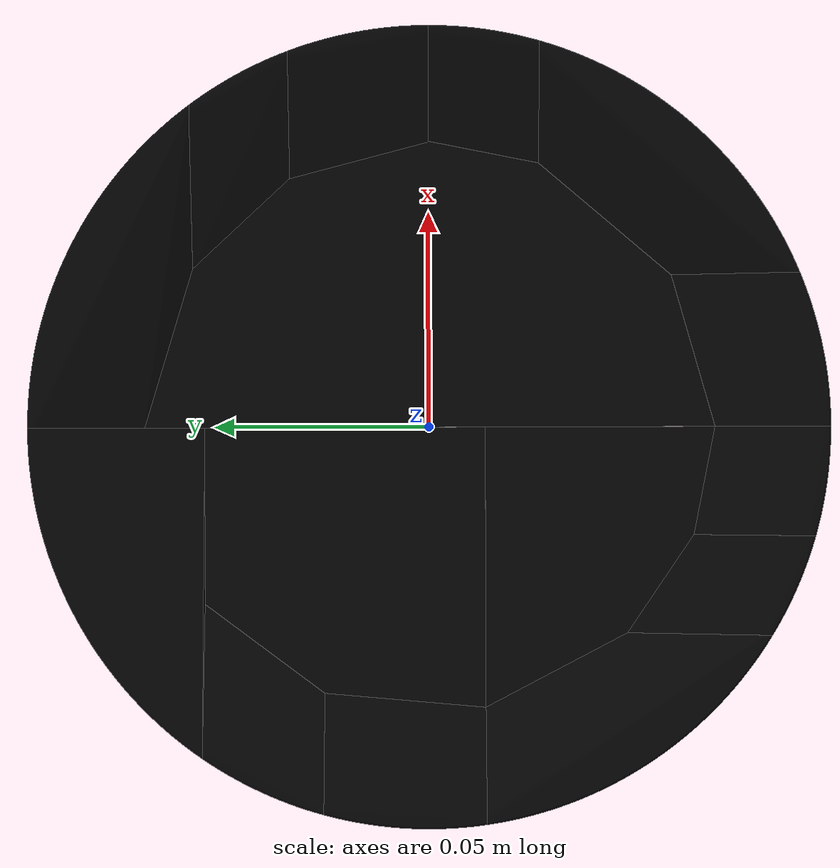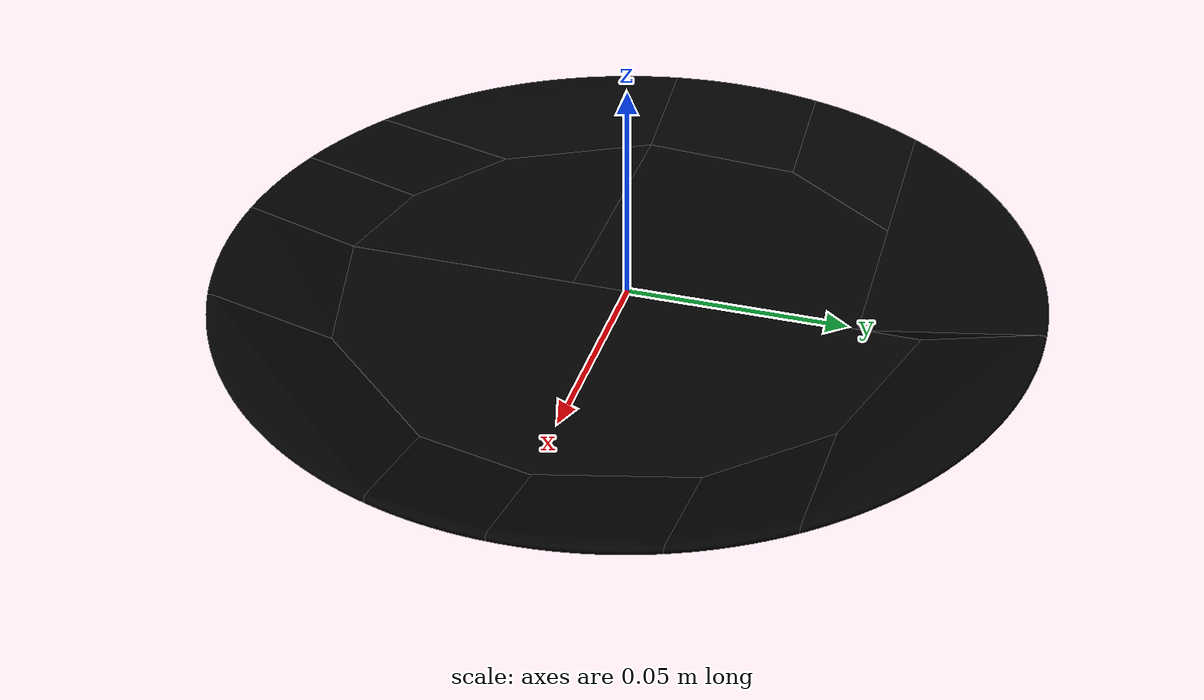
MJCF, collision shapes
<mujoco model="plate_23">
  <asset>
    <mesh file="visual/model_normalized_0.obj" name="model_normalized_0_vis" scale="0.185 0.185 0.185" refquat="1.0 0.0 0.0 0.0" />
    <material name="Material.387" specular="0.5" shininess="0.359999993" rgba="0.800000 0.800000 0.800000 1.0" />
    <mesh file="collision/model_collision_0.obj" name="model_collision_0" scale="0.185 0.185 0.185" refquat="1.0 0.0 0.0 0.0" />
    <mesh file="collision/model_collision_1.obj" name="model_collision_1" scale="0.185 0.185 0.185" refquat="1.0 0.0 0.0 0.0" />
    <mesh file="collision/model_collision_2.obj" name="model_collision_2" scale="0.185 0.185 0.185" refquat="1.0 0.0 0.0 0.0" />
    <mesh file="collision/model_collision_3.obj" name="model_collision_3" scale="0.185 0.185 0.185" refquat="1.0 0.0 0.0 0.0" />
    <mesh file="collision/model_collision_4.obj" name="model_collision_4" scale="0.185 0.185 0.185" refquat="1.0 0.0 0.0 0.0" />
    <mesh file="collision/model_collision_5.obj" name="model_collision_5" scale="0.185 0.185 0.185" refquat="1.0 0.0 0.0 0.0" />
    <mesh file="collision/model_collision_6.obj" name="model_collision_6" scale="0.185 0.185 0.185" refquat="1.0 0.0 0.0 0.0" />
    <mesh file="collision/model_collision_7.obj" name="model_collision_7" scale="0.185 0.185 0.185" refquat="1.0 0.0 0.0 0.0" />
    <mesh file="collision/model_collision_8.obj" name="model_collision_8" scale="0.185 0.185 0.185" refquat="1.0 0.0 0.0 0.0" />
    <mesh file="collision/model_collision_9.obj" name="model_collision_9" scale="0.185 0.185 0.185" refquat="1.0 0.0 0.0 0.0" />
    <mesh file="collision/model_collision_10.obj" name="model_collision_10" scale="0.185 0.185 0.185" refquat="1.0 0.0 0.0 0.0" />
    <mesh file="collision/model_collision_11.obj" name="model_collision_11" scale="0.185 0.185 0.185" refquat="1.0 0.0 0.0 0.0" />
    <mesh file="collision/model_collision_12.obj" name="model_collision_12" scale="0.185 0.185 0.185" refquat="1.0 0.0 0.0 0.0" />
    <mesh file="collision/model_collision_13.obj" name="model_collision_13" scale="0.185 0.185 0.185" refquat="1.0 0.0 0.0 0.0" />
    <mesh file="collision/model_collision_14.obj" name="model_collision_14" scale="0.185 0.185 0.185" refquat="1.0 0.0 0.0 0.0" />
  </asset>
  <default>
    <default class="region">
      <geom group="1" conaffinity="0" contype="0" rgba="0 1 0 0" />
    </default>
  </default>
  <worldbody>
    <body>
      <body name="object">
        <geom density="0" type="mesh" mesh="model_normalized_0_vis" conaffinity="0" contype="0" group="2" material="Material.387" mass="0.075" />
        <geom class="region" name="reg_bbox" type="box" pos="1.8500000041610231e-09 1.8499999990262416e-09 -5.455834999999916e-05" size="0.0912271556 0.09122715005 0.0058437911000000006" />
        <geom solimp="0.998 0.998 0.001" solref="0.004 1" density="0" friction="0.6 0.03 0.003" type="mesh" group="3" rgba="0 0 0 0" mesh="model_collision_0" condim="6" priority="1" />
        <geom solimp="0.998 0.998 0.001" solref="0.004 1" density="0" friction="0.6 0.03 0.003" type="mesh" group="3" rgba="0 0 0 0" mesh="model_collision_1" condim="6" priority="1" />
        <geom solimp="0.998 0.998 0.001" solref="0.004 1" density="0" friction="0.6 0.03 0.003" type="mesh" group="3" rgba="0 0 0 0" mesh="model_collision_2" condim="6" priority="1" />
        <geom solimp="0.998 0.998 0.001" solref="0.004 1" density="0" friction="0.6 0.03 0.003" type="mesh" group="3" rgba="0 0 0 0" mesh="model_collision_3" condim="6" priority="1" />
        <geom solimp="0.998 0.998 0.001" solref="0.004 1" density="0" friction="0.6 0.03 0.003" type="mesh" group="3" rgba="0 0 0 0" mesh="model_collision_4" condim="6" priority="1" />
        <geom solimp="0.998 0.998 0.001" solref="0.004 1" density="0" friction="0.6 0.03 0.003" type="mesh" group="3" rgba="0 0 0 0" mesh="model_collision_5" condim="6" priority="1" />
        <geom solimp="0.998 0.998 0.001" solref="0.004 1" density="0" friction="0.6 0.03 0.003" type="mesh" group="3" rgba="0 0 0 0" mesh="model_collision_6" condim="6" priority="1" />
        <geom solimp="0.998 0.998 0.001" solref="0.004 1" density="0" friction="0.6 0.03 0.003" type="mesh" group="3" rgba="0 0 0 0" mesh="model_collision_7" condim="6" priority="1" />
        <geom solimp="0.998 0.998 0.001" solref="0.004 1" density="0" friction="0.6 0.03 0.003" type="mesh" group="3" rgba="0 0 0 0" mesh="model_collision_8" condim="6" priority="1" />
        <geom solimp="0.998 0.998 0.001" solref="0.004 1" density="0" friction="0.6 0.03 0.003" type="mesh" group="3" rgba="0 0 0 0" mesh="model_collision_9" condim="6" priority="1" />
        <geom solimp="0.998 0.998 0.001" solref="0.004 1" density="0" friction="0.6 0.03 0.003" type="mesh" group="3" rgba="0 0 0 0" mesh="model_collision_10" condim="6" priority="1" />
        <geom solimp="0.998 0.998 0.001" solref="0.004 1" density="0" friction="0.6 0.03 0.003" type="mesh" group="3" rgba="0 0 0 0" mesh="model_collision_11" condim="6" priority="1" />
        <geom solimp="0.998 0.998 0.001" solref="0.004 1" density="0" friction="0.6 0.03 0.003" type="mesh" group="3" rgba="0 0 0 0" mesh="model_collision_12" condim="6" priority="1" />
        <geom solimp="0.998 0.998 0.001" solref="0.004 1" density="0" friction="0.6 0.03 0.003" type="mesh" group="3" rgba="0 0 0 0" mesh="model_collision_13" condim="6" priority="1" />
        <geom solimp="0.998 0.998 0.001" solref="0.004 1" density="0" friction="0.6 0.03 0.003" type="mesh" group="3" rgba="0 0 0 0" mesh="model_collision_14" condim="6" priority="1" />
      </body>
    </body>
  </worldbody>
</mujoco>
